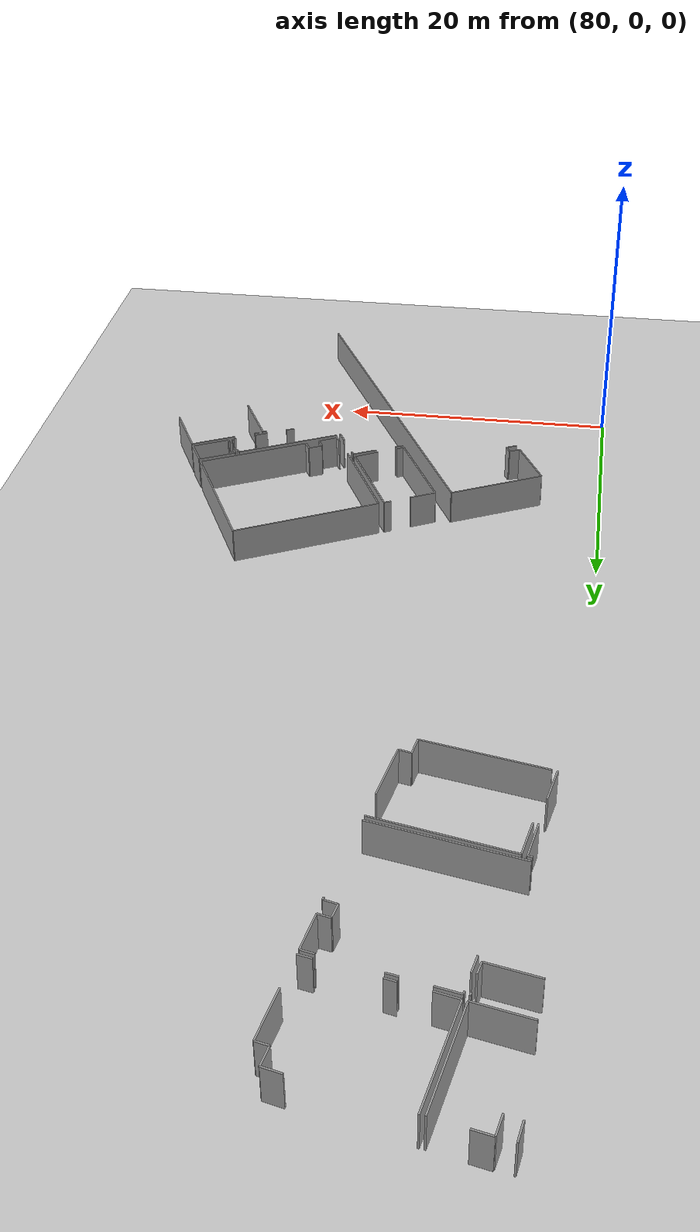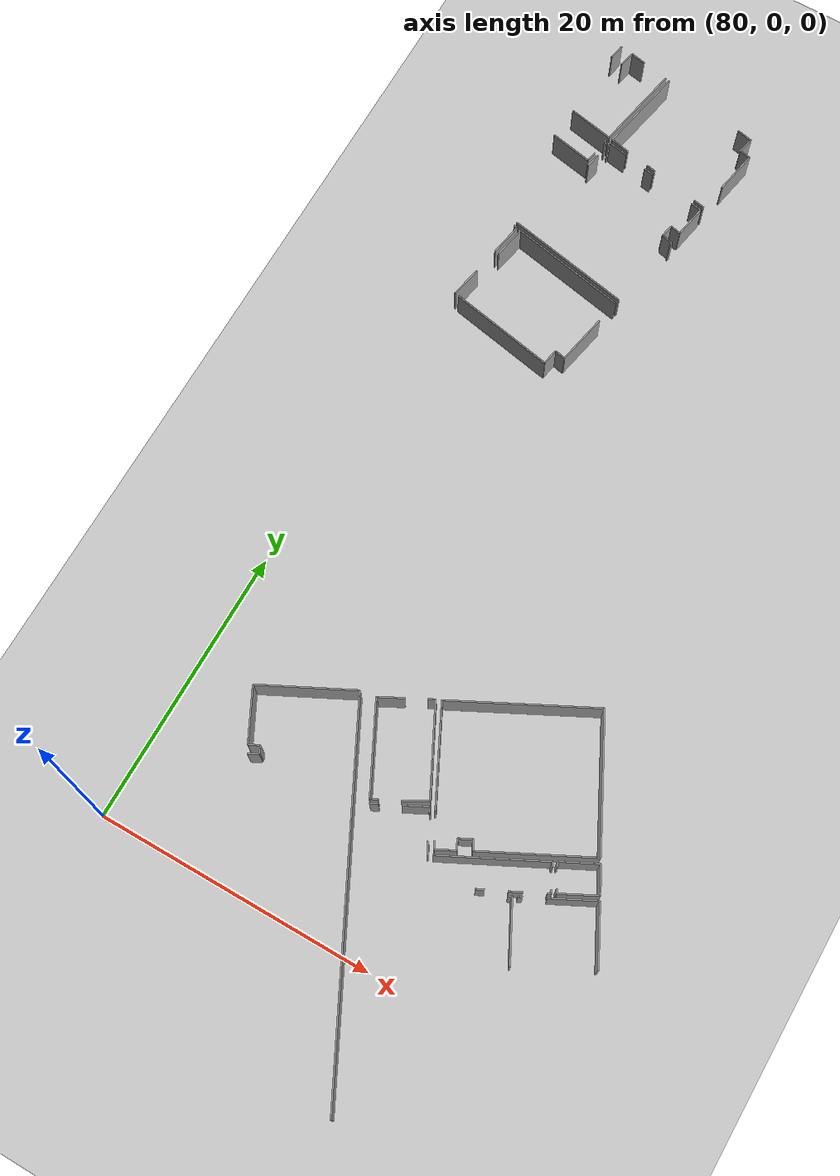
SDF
<sdf version="1.6">
 <world name="default">
  <model name="ground_plane">
   <static>1</static>
   <link name="link">
    <collision name="collision">
     <geometry><plane><normal>0 0 1</normal><size>100 100</size></plane></geometry>
     <surface><friction><ode><mu>100</mu><mu2>50</mu2></ode></friction></surface>
    </collision>
    <visual name="visual">
     <cast_shadows>0</cast_shadows>
     <geometry><plane><normal>0 0 1</normal><size>100 100</size></plane></geometry>
     <material>
      <script><uri>file://media/materials/scripts/gazebo.material</uri><name>Gazebo/Grey</name></script>
     </material>
    </visual>
   </link>
  </model>
  <model name="0510045925_40">
   <static>1</static>
   <link name="Wall_29">
    <collision name="Wall_29_Collision">
     <geometry><box><size>0.801804464238 0.1 2.5</size></box></geometry>
     <pose>0.400902232119 0 1.25 0 0 0</pose>
    </collision>
    <visual name="Wall_29_Visual">
     <pose>0.400902232119 0 1.25 0 0 0</pose>
     <geometry><box><size>0.801804464238 0.1 2.5</size></box></geometry>
     <material>
      <script><uri>file://media/materials/scripts/gazebo.material</uri><name>Gazebo/Grey</name></script>
      <ambient>1 1 1 1</ambient>
     </material>
    </visual>
    <pose>220.355625492 -93.2648156138 0 0 0 0.470442521411</pose>
   </link>
   <link name="Wall_30">
    <collision name="Wall_30_Collision">
     <geometry><box><size>0.570466044514 0.1 2.5</size></box></geometry>
     <pose>0.285233022257 0 1.25 0 0 0</pose>
    </collision>
    <visual name="Wall_30_Visual">
     <pose>0.285233022257 0 1.25 0 0 0</pose>
     <geometry><box><size>0.570466044514 0.1 2.5</size></box></geometry>
     <material>
      <script><uri>file://media/materials/scripts/gazebo.material</uri><name>Gazebo/Grey</name></script>
      <ambient>1 1 1 1</ambient>
     </material>
    </visual>
    <pose>221.070328164 -92.9013730616 0 0 0 2.05434180687</pose>
   </link>
   <link name="Wall_31">
    <collision name="Wall_31_Collision">
     <geometry><box><size>0.802244029599 0.1 2.5</size></box></geometry>
     <pose>0.4011220148 0 1.25 0 0 0</pose>
    </collision>
    <visual name="Wall_31_Visual">
     <pose>0.4011220148 0 1.25 0 0 0</pose>
     <geometry><box><size>0.802244029599 0.1 2.5</size></box></geometry>
     <material>
      <script><uri>file://media/materials/scripts/gazebo.material</uri><name>Gazebo/Grey</name></script>
      <ambient>1 1 1 1</ambient>
     </material>
    </visual>
    <pose>220.805106469 -92.3963097383 0 0 0 -2.69506520563</pose>
   </link>
   <link name="Wall_32">
    <collision name="Wall_32_Collision">
     <geometry><box><size>3.96179362654 0.1 2.5</size></box></geometry>
     <pose>1.98089681327 0 1.25 0 0 0</pose>
    </collision>
    <visual name="Wall_32_Visual">
     <pose>1.98089681327 0 1.25 0 0 0</pose>
     <geometry><box><size>3.96179362654 0.1 2.5</size></box></geometry>
     <material>
      <script><uri>file://media/materials/scripts/gazebo.material</uri><name>Gazebo/Grey</name></script>
      <ambient>1 1 1 1</ambient>
     </material>
    </visual>
    <pose>220.081520774 -92.742747646 0 0 0 2.04435679907</pose>
   </link>
   <link name="Wall_33">
    <collision name="Wall_33_Collision">
     <geometry><box><size>6.96411404976 0.1 2.5</size></box></geometry>
     <pose>3.48205702488 0 1.25 0 0 0</pose>
    </collision>
    <visual name="Wall_33_Visual">
     <pose>3.48205702488 0 1.25 0 0 0</pose>
     <geometry><box><size>6.96411404976 0.1 2.5</size></box></geometry>
     <material>
      <script><uri>file://media/materials/scripts/gazebo.material</uri><name>Gazebo/Grey</name></script>
      <ambient>1 1 1 1</ambient>
     </material>
    </visual>
    <pose>218.27471384 -89.2169488084 0 0 0 0.465880475751</pose>
   </link>
   <link name="Wall_34">
    <collision name="Wall_34_Collision">
     <geometry><box><size>26.6350946096 0.1 2.5</size></box></geometry>
     <pose>13.3175473048 0 1.25 0 0 0</pose>
    </collision>
    <visual name="Wall_34_Visual">
     <pose>13.3175473048 0 1.25 0 0 0</pose>
     <geometry><box><size>26.6350946096 0.1 2.5</size></box></geometry>
     <material>
      <script><uri>file://media/materials/scripts/gazebo.material</uri><name>Gazebo/Grey</name></script>
      <ambient>1 1 1 1</ambient>
     </material>
    </visual>
    <pose>224.496637141 -86.0886018121 0 0 0 -1.0994184397</pose>
   </link>
   <link name="Wall_185">
    <collision name="Wall_185_Collision">
     <geometry><box><size>6.65224664636 0.1 2.5</size></box></geometry>
     <pose>3.32612332318 0 1.25 0 0 0</pose>
    </collision>
    <visual name="Wall_185_Visual">
     <pose>3.32612332318 0 1.25 0 0 0</pose>
     <geometry><box><size>6.65224664636 0.1 2.5</size></box></geometry>
     <material>
      <script><uri>file://media/materials/scripts/gazebo.material</uri><name>Gazebo/Grey</name></script>
      <ambient>1 1 1 1</ambient>
     </material>
    </visual>
    <pose>228.663790259 -91.857998528 0 0 0 2.04159313063</pose>
   </link>
   <link name="Wall_186">
    <collision name="Wall_186_Collision">
     <geometry><box><size>1.86283370617 0.1 2.5</size></box></geometry>
     <pose>0.931416853087 0 1.25 0 0 0</pose>
    </collision>
    <visual name="Wall_186_Visual">
     <pose>0.931416853087 0 1.25 0 0 0</pose>
     <geometry><box><size>1.86283370617 0.1 2.5</size></box></geometry>
     <material>
      <script><uri>file://media/materials/scripts/gazebo.material</uri><name>Gazebo/Grey</name></script>
      <ambient>1 1 1 1</ambient>
     </material>
    </visual>
    <pose>225.646354153 -85.9294687952 0 0 0 0.475651176016</pose>
   </link>
   <link name="Wall_187">
    <collision name="Wall_187_Collision">
     <geometry><box><size>0.503315835092 0.1 2.5</size></box></geometry>
     <pose>0.251657917546 0 1.25 0 0 0</pose>
    </collision>
    <visual name="Wall_187_Visual">
     <pose>0.251657917546 0 1.25 0 0 0</pose>
     <geometry><box><size>0.503315835092 0.1 2.5</size></box></geometry>
     <material>
      <script><uri>file://media/materials/scripts/gazebo.material</uri><name>Gazebo/Grey</name></script>
      <ambient>1 1 1 1</ambient>
     </material>
    </visual>
    <pose>228.615568133 -84.3934671709 0 0 0 0.476727602752</pose>
   </link>
   <link name="Wall_188">
    <collision name="Wall_188_Collision">
     <geometry><box><size>6.65425583131 0.1 2.5</size></box></geometry>
     <pose>3.32712791566 0 1.25 0 0 0</pose>
    </collision>
    <visual name="Wall_188_Visual">
     <pose>3.32712791566 0 1.25 0 0 0</pose>
     <geometry><box><size>6.65425583131 0.1 2.5</size></box></geometry>
     <material>
      <script><uri>file://media/materials/scripts/gazebo.material</uri><name>Gazebo/Grey</name></script>
      <ambient>1 1 1 1</ambient>
     </material>
    </visual>
    <pose>229.062764904 -84.1625085658 0 0 0 -1.10075221655</pose>
   </link>
   <link name="Wall_189">
    <collision name="Wall_189_Collision">
     <geometry><box><size>1.82753539018 0.1 2.5</size></box></geometry>
     <pose>0.91376769509 0 1.25 0 0 0</pose>
    </collision>
    <visual name="Wall_189_Visual">
     <pose>0.91376769509 0 1.25 0 0 0</pose>
     <geometry><box><size>1.82753539018 0.1 2.5</size></box></geometry>
     <material>
      <script><uri>file://media/materials/scripts/gazebo.material</uri><name>Gazebo/Grey</name></script>
      <ambient>1 1 1 1</ambient>
     </material>
    </visual>
    <pose>232.076647801 -90.0950991092 0 0 0 -2.64415229598</pose>
   </link>
   <link name="Wall_190">
    <collision name="Wall_190_Collision">
     <geometry><box><size>0.546676322306 0.1 2.5</size></box></geometry>
     <pose>0.273338161153 0 1.25 0 0 0</pose>
    </collision>
    <visual name="Wall_190_Visual">
     <pose>0.273338161153 0 1.25 0 0 0</pose>
     <geometry><box><size>0.546676322306 0.1 2.5</size></box></geometry>
     <material>
      <script><uri>file://media/materials/scripts/gazebo.material</uri><name>Gazebo/Grey</name></script>
      <ambient>1 1 1 1</ambient>
     </material>
    </visual>
    <pose>229.163777569 -91.6369381488 0 0 0 -2.72530100757</pose>
   </link>
   <link name="Wall_191">
    <collision name="Wall_191_Collision">
     <geometry><box><size>10.5384348215 0.1 2.5</size></box></geometry>
     <pose>5.26921741075 0 1.25 0 0 0</pose>
    </collision>
    <visual name="Wall_191_Visual">
     <pose>5.26921741075 0 1.25 0 0 0</pose>
     <geometry><box><size>10.5384348215 0.1 2.5</size></box></geometry>
     <material>
      <script><uri>file://media/materials/scripts/gazebo.material</uri><name>Gazebo/Grey</name></script>
      <ambient>1 1 1 1</ambient>
     </material>
    </visual>
    <pose>229.439151291 -83.9993147382 0 0 0 0.470379156845</pose>
   </link>
   <link name="Wall_192">
    <collision name="Wall_192_Collision">
     <geometry><box><size>9.66241929952 0.1 2.5</size></box></geometry>
     <pose>4.83120964976 0 1.25 0 0 0</pose>
    </collision>
    <visual name="Wall_192_Visual">
     <pose>4.83120964976 0 1.25 0 0 0</pose>
     <geometry><box><size>9.66241929952 0.1 2.5</size></box></geometry>
     <material>
      <script><uri>file://media/materials/scripts/gazebo.material</uri><name>Gazebo/Grey</name></script>
      <ambient>1 1 1 1</ambient>
     </material>
    </visual>
    <pose>238.833075303 -79.2230400244 0 0 0 -1.10202706349</pose>
   </link>
   <link name="Wall_193">
    <collision name="Wall_193_Collision">
     <geometry><box><size>8.05867814222 0.1 2.5</size></box></geometry>
     <pose>4.02933907111 0 1.25 0 0 0</pose>
    </collision>
    <visual name="Wall_193_Visual">
     <pose>4.02933907111 0 1.25 0 0 0</pose>
     <geometry><box><size>8.05867814222 0.1 2.5</size></box></geometry>
     <material>
      <script><uri>file://media/materials/scripts/gazebo.material</uri><name>Gazebo/Grey</name></script>
      <ambient>1 1 1 1</ambient>
     </material>
    </visual>
    <pose>243.19844674 -87.843125809 0 0 0 -2.67374782702</pose>
   </link>
   <link name="Wall_194">
    <collision name="Wall_194_Collision">
     <geometry><box><size>0.730199156979 0.1 2.5</size></box></geometry>
     <pose>0.36509957849 0 1.25 0 0 0</pose>
    </collision>
    <visual name="Wall_194_Visual">
     <pose>0.36509957849 0 1.25 0 0 0</pose>
     <geometry><box><size>0.730199156979 0.1 2.5</size></box></geometry>
     <material>
      <script><uri>file://media/materials/scripts/gazebo.material</uri><name>Gazebo/Grey</name></script>
      <ambient>1 1 1 1</ambient>
     </material>
    </visual>
    <pose>236.005735895 -91.4772975305 0 0 0 2.0750252533</pose>
   </link>
   <link name="Wall_195">
    <collision name="Wall_195_Collision">
     <geometry><box><size>0.988505239638 0.1 2.5</size></box></geometry>
     <pose>0.494252619819 0 1.25 0 0 0</pose>
    </collision>
    <visual name="Wall_195_Visual">
     <pose>0.494252619819 0 1.25 0 0 0</pose>
     <geometry><box><size>0.988505239638 0.1 2.5</size></box></geometry>
     <material>
      <script><uri>file://media/materials/scripts/gazebo.material</uri><name>Gazebo/Grey</name></script>
      <ambient>1 1 1 1</ambient>
     </material>
    </visual>
    <pose>235.652952971 -90.8379736555 0 0 0 -2.68161938791</pose>
   </link>
   <link name="Wall_196">
    <collision name="Wall_196_Collision">
     <geometry><box><size>0.763258778433 0.1 2.5</size></box></geometry>
     <pose>0.381629389216 0 1.25 0 0 0</pose>
    </collision>
    <visual name="Wall_196_Visual">
     <pose>0.381629389216 0 1.25 0 0 0</pose>
     <geometry><box><size>0.763258778433 0.1 2.5</size></box></geometry>
     <material>
      <script><uri>file://media/materials/scripts/gazebo.material</uri><name>Gazebo/Grey</name></script>
      <ambient>1 1 1 1</ambient>
     </material>
    </visual>
    <pose>234.76718865 -91.2767950052 0 0 0 -1.12008672279</pose>
   </link>
   <link name="Wall_197">
    <collision name="Wall_197_Collision">
     <geometry><box><size>1.42061362268 0.1 2.5</size></box></geometry>
     <pose>0.710306811341 0 1.25 0 0 0</pose>
    </collision>
    <visual name="Wall_197_Visual">
     <pose>0.710306811341 0 1.25 0 0 0</pose>
     <geometry><box><size>1.42061362268 0.1 2.5</size></box></geometry>
     <material>
      <script><uri>file://media/materials/scripts/gazebo.material</uri><name>Gazebo/Grey</name></script>
      <ambient>1 1 1 1</ambient>
     </material>
    </visual>
    <pose>235.099667521 -91.9638334052 0 0 0 -2.65972746615</pose>
   </link>
   <link name="Wall_198">
    <collision name="Wall_198_Collision">
     <geometry><box><size>0.546520705868 0.1 2.5</size></box></geometry>
     <pose>0.273260352934 0 1.25 0 0 0</pose>
    </collision>
    <visual name="Wall_198_Visual">
     <pose>0.273260352934 0 1.25 0 0 0</pose>
     <geometry><box><size>0.546520705868 0.1 2.5</size></box></geometry>
     <material>
      <script><uri>file://media/materials/scripts/gazebo.material</uri><name>Gazebo/Grey</name></script>
      <ambient>1 1 1 1</ambient>
     </material>
    </visual>
    <pose>233.840816223 -92.6221923301 0 0 0 2.08015012732</pose>
   </link>
   <link name="Wall_199">
    <collision name="Wall_199_Collision">
     <geometry><box><size>7.23049127737 0.1 2.5</size></box></geometry>
     <pose>3.61524563868 0 1.25 0 0 0</pose>
    </collision>
    <visual name="Wall_199_Visual">
     <pose>3.61524563868 0 1.25 0 0 0</pose>
     <geometry><box><size>7.23049127737 0.1 2.5</size></box></geometry>
     <material>
      <script><uri>file://media/materials/scripts/gazebo.material</uri><name>Gazebo/Grey</name></script>
      <ambient>1 1 1 1</ambient>
     </material>
    </visual>
    <pose>232.678409177 -90.4636176747 0 0 0 2.03532301505</pose>
   </link>
   <link name="Wall_200">
    <collision name="Wall_200_Collision">
     <geometry><box><size>2.70568869587 0.1 2.5</size></box></geometry>
     <pose>1.35284434793 0 1.25 0 0 0</pose>
    </collision>
    <visual name="Wall_200_Visual">
     <pose>1.35284434793 0 1.25 0 0 0</pose>
     <geometry><box><size>2.70568869587 0.1 2.5</size></box></geometry>
     <material>
      <script><uri>file://media/materials/scripts/gazebo.material</uri><name>Gazebo/Grey</name></script>
      <ambient>1 1 1 1</ambient>
     </material>
    </visual>
    <pose>240.957386868 -89.3852186493 0 0 0 0.464738304096</pose>
   </link>
   <link name="Wall_201">
    <collision name="Wall_201_Collision">
     <geometry><box><size>1.99512909354 0.1 2.5</size></box></geometry>
     <pose>0.99756454677 0 1.25 0 0 0</pose>
    </collision>
    <visual name="Wall_201_Visual">
     <pose>0.99756454677 0 1.25 0 0 0</pose>
     <geometry><box><size>1.99512909354 0.1 2.5</size></box></geometry>
     <material>
      <script><uri>file://media/materials/scripts/gazebo.material</uri><name>Gazebo/Grey</name></script>
      <ambient>1 1 1 1</ambient>
     </material>
    </visual>
    <pose>243.376107205 -88.1725590721 0 0 0 -1.08649614078</pose>
   </link>
   <link name="Wall_202">
    <collision name="Wall_202_Collision">
     <geometry><box><size>2.71895594568 0.1 2.5</size></box></geometry>
     <pose>1.35947797284 0 1.25 0 0 0</pose>
    </collision>
    <visual name="Wall_202_Visual">
     <pose>1.35947797284 0 1.25 0 0 0</pose>
     <geometry><box><size>2.71895594568 0.1 2.5</size></box></geometry>
     <material>
      <script><uri>file://media/materials/scripts/gazebo.material</uri><name>Gazebo/Grey</name></script>
      <ambient>1 1 1 1</ambient>
     </material>
    </visual>
    <pose>244.305017639 -89.9382502982 0 0 0 -2.66926195314</pose>
   </link>
   <link name="Wall_203">
    <collision name="Wall_203_Collision">
     <geometry><box><size>0.313564533113 0.1 2.5</size></box></geometry>
     <pose>0.156782266556 0 1.25 0 0 0</pose>
    </collision>
    <visual name="Wall_203_Visual">
     <pose>0.156782266556 0 1.25 0 0 0</pose>
     <geometry><box><size>0.313564533113 0.1 2.5</size></box></geometry>
     <material>
      <script><uri>file://media/materials/scripts/gazebo.material</uri><name>Gazebo/Grey</name></script>
      <ambient>1 1 1 1</ambient>
     </material>
    </visual>
    <pose>241.883759295 -91.1752747392 0 0 0 2.07789483119</pose>
   </link>
   <link name="Wall_204">
    <collision name="Wall_204_Collision">
     <geometry><box><size>0.372066581054 0.1 2.5</size></box></geometry>
     <pose>0.186033290527 0 1.25 0 0 0</pose>
    </collision>
    <visual name="Wall_204_Visual">
     <pose>0.186033290527 0 1.25 0 0 0</pose>
     <geometry><box><size>0.372066581054 0.1 2.5</size></box></geometry>
     <material>
      <script><uri>file://media/materials/scripts/gazebo.material</uri><name>Gazebo/Grey</name></script>
      <ambient>1 1 1 1</ambient>
     </material>
    </visual>
    <pose>241.122357301 -89.718712723 0 0 0 2.03017306487</pose>
   </link>
   <link name="Wall_207">
    <collision name="Wall_207_Collision">
     <geometry><box><size>0.282734396419 0.1 2.5</size></box></geometry>
     <pose>0.14136719821 0 1.25 0 0 0</pose>
    </collision>
    <visual name="Wall_207_Visual">
     <pose>0.14136719821 0 1.25 0 0 0</pose>
     <geometry><box><size>0.282734396419 0.1 2.5</size></box></geometry>
     <material>
      <script><uri>file://media/materials/scripts/gazebo.material</uri><name>Gazebo/Grey</name></script>
      <ambient>1 1 1 1</ambient>
     </material>
    </visual>
    <pose>239.284840486 -92.838938098 0 0 0 0.43554256154</pose>
   </link>
   <link name="Wall_208">
    <collision name="Wall_208_Collision">
     <geometry><box><size>4.28891648338 0.1 2.5</size></box></geometry>
     <pose>2.14445824169 0 1.25 0 0 0</pose>
    </collision>
    <visual name="Wall_208_Visual">
     <pose>2.14445824169 0 1.25 0 0 0</pose>
     <geometry><box><size>4.28891648338 0.1 2.5</size></box></geometry>
     <material>
      <script><uri>file://media/materials/scripts/gazebo.material</uri><name>Gazebo/Grey</name></script>
      <ambient>1 1 1 1</ambient>
     </material>
    </visual>
    <pose>239.541179158 -92.7196517855 0 0 0 -1.0950277785</pose>
   </link>
   <link name="Wall_211">
    <collision name="Wall_211_Collision">
     <geometry><box><size>0.31769528016 0.1 2.5</size></box></geometry>
     <pose>0.15884764008 0 1.25 0 0 0</pose>
    </collision>
    <visual name="Wall_211_Visual">
     <pose>0.15884764008 0 1.25 0 0 0</pose>
     <geometry><box><size>0.31769528016 0.1 2.5</size></box></geometry>
     <material>
      <script><uri>file://media/materials/scripts/gazebo.material</uri><name>Gazebo/Grey</name></script>
      <ambient>1 1 1 1</ambient>
     </material>
    </visual>
    <pose>239.835587929 -92.5584883632 0 0 0 0.462933068215</pose>
   </link>
   <link name="Wall_212">
    <collision name="Wall_212_Collision">
     <geometry><box><size>3.28710663874 0.1 2.5</size></box></geometry>
     <pose>1.64355331937 0 1.25 0 0 0</pose>
    </collision>
    <visual name="Wall_212_Visual">
     <pose>1.64355331937 0 1.25 0 0 0</pose>
     <geometry><box><size>3.28710663874 0.1 2.5</size></box></geometry>
     <material>
      <script><uri>file://media/materials/scripts/gazebo.material</uri><name>Gazebo/Grey</name></script>
      <ambient>1 1 1 1</ambient>
     </material>
    </visual>
    <pose>241.497982285 -91.7143473516 0 0 0 0.469517707322</pose>
   </link>
   <link name="Wall_213">
    <collision name="Wall_213_Collision">
     <geometry><box><size>4.30461598477 0.1 2.5</size></box></geometry>
     <pose>2.15230799238 0 1.25 0 0 0</pose>
    </collision>
    <visual name="Wall_213_Visual">
     <pose>2.15230799238 0 1.25 0 0 0</pose>
     <geometry><box><size>4.30461598477 0.1 2.5</size></box></geometry>
     <material>
      <script><uri>file://media/materials/scripts/gazebo.material</uri><name>Gazebo/Grey</name></script>
      <ambient>1 1 1 1</ambient>
     </material>
    </visual>
    <pose>244.429379965 -90.2270754549 0 0 0 -1.09955472814</pose>
   </link>
   <link name="Wall_215">
    <collision name="Wall_215_Collision">
     <geometry><box><size>0.597059200058 0.1 2.5</size></box></geometry>
     <pose>0.298529600029 0 1.25 0 0 0</pose>
    </collision>
    <visual name="Wall_215_Visual">
     <pose>0.298529600029 0 1.25 0 0 0</pose>
     <geometry><box><size>0.597059200058 0.1 2.5</size></box></geometry>
     <material>
      <script><uri>file://media/materials/scripts/gazebo.material</uri><name>Gazebo/Grey</name></script>
      <ambient>1 1 1 1</ambient>
     </material>
    </visual>
    <pose>237.295043273 -93.4807999797 0 0 0 0.428280965675</pose>
   </link>
   <link name="Wall_216">
    <collision name="Wall_216_Collision">
     <geometry><box><size>0.933126059611 0.1 2.5</size></box></geometry>
     <pose>0.466563029806 0 1.25 0 0 0</pose>
    </collision>
    <visual name="Wall_216_Visual">
     <pose>0.466563029806 0 1.25 0 0 0</pose>
     <geometry><box><size>0.933126059611 0.1 2.5</size></box></geometry>
     <material>
      <script><uri>file://media/materials/scripts/gazebo.material</uri><name>Gazebo/Grey</name></script>
      <ambient>1 1 1 1</ambient>
     </material>
    </visual>
    <pose>239.1757062 -92.5803152204 0 0 0 0.486517449898</pose>
   </link>
   <link name="Wall_217">
    <collision name="Wall_217_Collision">
     <geometry><box><size>0.266121101512 0.1 2.5</size></box></geometry>
     <pose>0.133060550756 0 1.25 0 0 0</pose>
    </collision>
    <visual name="Wall_217_Visual">
     <pose>0.133060550756 0 1.25 0 0 0</pose>
     <geometry><box><size>0.266121101512 0.1 2.5</size></box></geometry>
     <material>
      <script><uri>file://media/materials/scripts/gazebo.material</uri><name>Gazebo/Grey</name></script>
      <ambient>1 1 1 1</ambient>
     </material>
    </visual>
    <pose>241.358391919 -91.4838963478 0 0 0 0.538783911281</pose>
   </link>
   <link name="Wall_218">
    <collision name="Wall_218_Collision">
     <geometry><box><size>0.236505726272 0.1 2.5</size></box></geometry>
     <pose>0.118252863136 0 1.25 0 0 0</pose>
    </collision>
    <visual name="Wall_218_Visual">
     <pose>0.118252863136 0 1.25 0 0 0</pose>
     <geometry><box><size>0.236505726272 0.1 2.5</size></box></geometry>
     <material>
      <script><uri>file://media/materials/scripts/gazebo.material</uri><name>Gazebo/Grey</name></script>
      <ambient>1 1 1 1</ambient>
     </material>
    </visual>
    <pose>241.586812517 -91.3473515901 0 0 0 2.07476788703</pose>
   </link>
   <link name="Wall_219">
    <collision name="Wall_219_Collision">
     <geometry><box><size>0.32711361369 0.1 2.5</size></box></geometry>
     <pose>0.163556806845 0 1.25 0 0 0</pose>
    </collision>
    <visual name="Wall_219_Visual">
     <pose>0.163556806845 0 1.25 0 0 0</pose>
     <geometry><box><size>0.32711361369 0.1 2.5</size></box></geometry>
     <material>
      <script><uri>file://media/materials/scripts/gazebo.material</uri><name>Gazebo/Grey</name></script>
      <ambient>1 1 1 1</ambient>
     </material>
    </visual>
    <pose>240.863480622 -89.8385066369 0 0 0 2.16353313212</pose>
   </link>
   <link name="Wall_220">
    <collision name="Wall_220_Collision">
     <geometry><box><size>7.57000635437 0.1 2.5</size></box></geometry>
     <pose>3.78500317718 0 1.25 0 0 0</pose>
    </collision>
    <visual name="Wall_220_Visual">
     <pose>3.78500317718 0 1.25 0 0 0</pose>
     <geometry><box><size>7.57000635437 0.1 2.5</size></box></geometry>
     <material>
      <script><uri>file://media/materials/scripts/gazebo.material</uri><name>Gazebo/Grey</name></script>
      <ambient>1 1 1 1</ambient>
     </material>
    </visual>
    <pose>240.680744144 -89.567193726 0 0 0 -2.67512620778</pose>
   </link>
   <link name="Wall_318">
    <collision name="Wall_318_Collision">
     <geometry><box><size>0.571042979669 0.1 2.5</size></box></geometry>
     <pose>0.285521489835 0 1.25 0 0 0</pose>
    </collision>
    <visual name="Wall_318_Visual">
     <pose>0.285521489835 0 1.25 0 0 0</pose>
     <geometry><box><size>0.571042979669 0.1 2.5</size></box></geometry>
     <material>
      <script><uri>file://media/materials/scripts/gazebo.material</uri><name>Gazebo/Grey</name></script>
      <ambient>1 1 1 1</ambient>
     </material>
    </visual>
    <pose>228.788660186 -92.1204284155 0 0 0 0.458082172525</pose>
   </link>
   <link name="Wall_319">
    <collision name="Wall_319_Collision">
     <geometry><box><size>1.79017309064 0.1 2.5</size></box></geometry>
     <pose>0.89508654532 0 1.25 0 0 0</pose>
    </collision>
    <visual name="Wall_319_Visual">
     <pose>0.89508654532 0 1.25 0 0 0</pose>
     <geometry><box><size>1.79017309064 0.1 2.5</size></box></geometry>
     <material>
      <script><uri>file://media/materials/scripts/gazebo.material</uri><name>Gazebo/Grey</name></script>
      <ambient>1 1 1 1</ambient>
     </material>
    </visual>
    <pose>230.639882236 -91.205730819 0 0 0 0.465169291823</pose>
   </link>
   <link name="Wall_320">
    <collision name="Wall_320_Collision">
     <geometry><box><size>0.390417034789 0.1 2.5</size></box></geometry>
     <pose>0.195208517395 0 1.25 0 0 0</pose>
    </collision>
    <visual name="Wall_320_Visual">
     <pose>0.195208517395 0 1.25 0 0 0</pose>
     <geometry><box><size>0.390417034789 0.1 2.5</size></box></geometry>
     <material>
      <script><uri>file://media/materials/scripts/gazebo.material</uri><name>Gazebo/Grey</name></script>
      <ambient>1 1 1 1</ambient>
     </material>
    </visual>
    <pose>232.239841628 -90.4027055151 0 0 0 -1.04955377956</pose>
   </link>
   <link name="Wall_321">
    <collision name="Wall_321_Collision">
     <geometry><box><size>0.905119679374 0.1 2.5</size></box></geometry>
     <pose>0.452559839687 0 1.25 0 0 0</pose>
    </collision>
    <visual name="Wall_321_Visual">
     <pose>0.452559839687 0 1.25 0 0 0</pose>
     <geometry><box><size>0.905119679374 0.1 2.5</size></box></geometry>
     <material>
      <script><uri>file://media/materials/scripts/gazebo.material</uri><name>Gazebo/Grey</name></script>
      <ambient>1 1 1 1</ambient>
     </material>
    </visual>
    <pose>233.23677064 -92.35113322 0 0 0 -1.07391127632</pose>
   </link>
   <link name="Wall_562">
    <collision name="Wall_562_Collision">
     <geometry><box><size>1.16593564241 0.1 2.5</size></box></geometry>
     <pose>0.582967821205 0 1.25 0 0 0</pose>
    </collision>
    <visual name="Wall_562_Visual">
     <pose>0.582967821205 0 1.25 0 0 0</pose>
     <geometry><box><size>1.16593564241 0.1 2.5</size></box></geometry>
     <material>
      <script><uri>file://media/materials/scripts/gazebo.material</uri><name>Gazebo/Grey</name></script>
      <ambient>1 1 1 1</ambient>
     </material>
    </visual>
    <pose>216.314357504 -34.7327986599 0 0 0 -1.74671690163</pose>
   </link>
   <link name="Wall_564">
    <collision name="Wall_564_Collision">
     <geometry><box><size>1.20411134977 0.1 2.5</size></box></geometry>
     <pose>0.602055674885 0 1.25 0 0 0</pose>
    </collision>
    <visual name="Wall_564_Visual">
     <pose>0.602055674885 0 1.25 0 0 0</pose>
     <geometry><box><size>1.20411134977 0.1 2.5</size></box></geometry>
     <material>
      <script><uri>file://media/materials/scripts/gazebo.material</uri><name>Gazebo/Grey</name></script>
      <ambient>1 1 1 1</ambient>
     </material>
    </visual>
    <pose>217.03058298 -36.0799725895 0 0 0 1.36273560705</pose>
   </link>
   <link name="Wall_565">
    <collision name="Wall_565_Collision">
     <geometry><box><size>1.1400838023 0.1 2.5</size></box></geometry>
     <pose>0.570041901151 0 1.25 0 0 0</pose>
    </collision>
    <visual name="Wall_565_Visual">
     <pose>0.570041901151 0 1.25 0 0 0</pose>
     <geometry><box><size>1.1400838023 0.1 2.5</size></box></geometry>
     <material>
      <script><uri>file://media/materials/scripts/gazebo.material</uri><name>Gazebo/Grey</name></script>
      <ambient>1 1 1 1</ambient>
     </material>
    </visual>
    <pose>217.279307632 -34.9018299028 0 0 0 -0.196042144392</pose>
   </link>
   <link name="Wall_566">
    <collision name="Wall_566_Collision">
     <geometry><box><size>6.541583933 0.1 2.5</size></box></geometry>
     <pose>3.2707919665 0 1.25 0 0 0</pose>
    </collision>
    <visual name="Wall_566_Visual">
     <pose>3.2707919665 0 1.25 0 0 0</pose>
     <geometry><box><size>6.541583933 0.1 2.5</size></box></geometry>
     <material>
      <script><uri>file://media/materials/scripts/gazebo.material</uri><name>Gazebo/Grey</name></script>
      <ambient>1 1 1 1</ambient>
     </material>
    </visual>
    <pose>220.378467552 -35.4926778508 0 0 0 -1.76317758567</pose>
   </link>
   <link name="Wall_567">
    <collision name="Wall_567_Collision">
     <geometry><box><size>3.39094272408 0.1 2.5</size></box></geometry>
     <pose>1.69547136204 0 1.25 0 0 0</pose>
    </collision>
    <visual name="Wall_567_Visual">
     <pose>1.69547136204 0 1.25 0 0 0</pose>
     <geometry><box><size>3.39094272408 0.1 2.5</size></box></geometry>
     <material>
      <script><uri>file://media/materials/scripts/gazebo.material</uri><name>Gazebo/Grey</name></script>
      <ambient>1 1 1 1</ambient>
     </material>
    </visual>
    <pose>219.127737875 -41.9135808736 0 0 0 2.94680989348</pose>
   </link>
   <link name="Wall_574">
    <collision name="Wall_574_Collision">
     <geometry><box><size>0.286244396768 0.1 2.5</size></box></geometry>
     <pose>0.143122198384 0 1.25 0 0 0</pose>
    </collision>
    <visual name="Wall_574_Visual">
     <pose>0.143122198384 0 1.25 0 0 0</pose>
     <geometry><box><size>0.286244396768 0.1 2.5</size></box></geometry>
     <material>
      <script><uri>file://media/materials/scripts/gazebo.material</uri><name>Gazebo/Grey</name></script>
      <ambient>1 1 1 1</ambient>
     </material>
    </visual>
    <pose>216.662318215 -51.5333874775 0 0 0 -0.214437388134</pose>
   </link>
   <link name="Wall_575">
    <collision name="Wall_575_Collision">
     <geometry><box><size>2.44325785359 0.1 2.5</size></box></geometry>
     <pose>1.22162892679 0 1.25 0 0 0</pose>
    </collision>
    <visual name="Wall_575_Visual">
     <pose>1.22162892679 0 1.25 0 0 0</pose>
     <geometry><box><size>2.44325785359 0.1 2.5</size></box></geometry>
     <material>
      <script><uri>file://media/materials/scripts/gazebo.material</uri><name>Gazebo/Grey</name></script>
      <ambient>1 1 1 1</ambient>
     </material>
    </visual>
    <pose>216.942006548 -51.5942996371 0 0 0 -1.75602941568</pose>
   </link>
   <link name="Wall_576">
    <collision name="Wall_576_Collision">
     <geometry><box><size>2.34463478816 0.1 2.5</size></box></geometry>
     <pose>1.17231739408 0 1.25 0 0 0</pose>
    </collision>
    <visual name="Wall_576_Visual">
     <pose>1.17231739408 0 1.25 0 0 0</pose>
     <geometry><box><size>2.34463478816 0.1 2.5</size></box></geometry>
     <material>
      <script><uri>file://media/materials/scripts/gazebo.material</uri><name>Gazebo/Grey</name></script>
      <ambient>1 1 1 1</ambient>
     </material>
    </visual>
    <pose>216.142280653 -55.9416512271 0 0 0 -1.77131256434</pose>
   </link>
   <link name="Wall_583">
    <collision name="Wall_583_Collision">
     <geometry><box><size>6.54973172122 0.1 2.5</size></box></geometry>
     <pose>3.27486586061 0 1.25 0 0 0</pose>
    </collision>
    <visual name="Wall_583_Visual">
     <pose>3.27486586061 0 1.25 0 0 0</pose>
     <geometry><box><size>6.54973172122 0.1 2.5</size></box></geometry>
     <material>
      <script><uri>file://media/materials/scripts/gazebo.material</uri><name>Gazebo/Grey</name></script>
      <ambient>1 1 1 1</ambient>
     </material>
    </visual>
    <pose>219.416816832 -41.9516509733 0 0 0 1.37569580502</pose>
   </link>
   <link name="Wall_584">
    <collision name="Wall_584_Collision">
     <geometry><box><size>1.17288163475 0.1 2.5</size></box></geometry>
     <pose>0.586440817376 0 1.25 0 0 0</pose>
    </collision>
    <visual name="Wall_584_Visual">
     <pose>0.586440817376 0 1.25 0 0 0</pose>
     <geometry><box><size>1.17288163475 0.1 2.5</size></box></geometry>
     <material>
      <script><uri>file://media/materials/scripts/gazebo.material</uri><name>Gazebo/Grey</name></script>
      <ambient>1 1 1 1</ambient>
     </material>
    </visual>
    <pose>226.955965585 -36.7708179995 0 0 0 -0.217894407231</pose>
   </link>
   <link name="Wall_585">
    <collision name="Wall_585_Collision">
     <geometry><box><size>1.17462986657 0.1 2.5</size></box></geometry>
     <pose>0.587314933286 0 1.25 0 0 0</pose>
    </collision>
    <visual name="Wall_585_Visual">
     <pose>0.587314933286 0 1.25 0 0 0</pose>
     <geometry><box><size>1.17462986657 0.1 2.5</size></box></geometry>
     <material>
      <script><uri>file://media/materials/scripts/gazebo.material</uri><name>Gazebo/Grey</name></script>
      <ambient>1 1 1 1</ambient>
     </material>
    </visual>
    <pose>228.101114185 -37.0243648638 0 0 0 -1.77069198737</pose>
   </link>
   <link name="Wall_586">
    <collision name="Wall_586_Collision">
     <geometry><box><size>0.796912910688 0.1 2.5</size></box></geometry>
     <pose>0.398456455344 0 1.25 0 0 0</pose>
    </collision>
    <visual name="Wall_586_Visual">
     <pose>0.398456455344 0 1.25 0 0 0</pose>
     <geometry><box><size>0.796912910688 0.1 2.5</size></box></geometry>
     <material>
      <script><uri>file://media/materials/scripts/gazebo.material</uri><name>Gazebo/Grey</name></script>
      <ambient>1 1 1 1</ambient>
     </material>
    </visual>
    <pose>227.867871374 -38.1756046801 0 0 0 -0.205265478569</pose>
   </link>
   <link name="Wall_587">
    <collision name="Wall_587_Collision">
     <geometry><box><size>3.18178775387 0.1 2.5</size></box></geometry>
     <pose>1.59089387693 0 1.25 0 0 0</pose>
    </collision>
    <visual name="Wall_587_Visual">
     <pose>1.59089387693 0 1.25 0 0 0</pose>
     <geometry><box><size>3.18178775387 0.1 2.5</size></box></geometry>
     <material>
      <script><uri>file://media/materials/scripts/gazebo.material</uri><name>Gazebo/Grey</name></script>
      <ambient>1 1 1 1</ambient>
     </material>
    </visual>
    <pose>228.648054618 -38.3380371057 0 0 0 -1.75822679044</pose>
   </link>
   <link name="Wall_588">
    <collision name="Wall_588_Collision">
     <geometry><box><size>0.851144662794 0.1 2.5</size></box></geometry>
     <pose>0.425572331397 0 1.25 0 0 0</pose>
    </collision>
    <visual name="Wall_588_Visual">
     <pose>0.425572331397 0 1.25 0 0 0</pose>
     <geometry><box><size>0.851144662794 0.1 2.5</size></box></geometry>
     <material>
      <script><uri>file://media/materials/scripts/gazebo.material</uri><name>Gazebo/Grey</name></script>
      <ambient>1 1 1 1</ambient>
     </material>
    </visual>
    <pose>227.651887008 -43.5703916144 0 0 0 2.94653627076</pose>
   </link>
   <link name="Wall_589">
    <collision name="Wall_589_Collision">
     <geometry><box><size>0.698909338565 0.1 2.5</size></box></geometry>
     <pose>0.349454669283 0 1.25 0 0 0</pose>
    </collision>
    <visual name="Wall_589_Visual">
     <pose>0.349454669283 0 1.25 0 0 0</pose>
     <geometry><box><size>0.698909338565 0.1 2.5</size></box></geometry>
     <material>
      <script><uri>file://media/materials/scripts/gazebo.material</uri><name>Gazebo/Grey</name></script>
      <ambient>1 1 1 1</ambient>
     </material>
    </visual>
    <pose>223.278140149 -42.7166061775 0 0 0 2.92938336263</pose>
   </link>
   <link name="Wall_590">
    <collision name="Wall_590_Collision">
     <geometry><box><size>1.46287420656 0.1 2.5</size></box></geometry>
     <pose>0.731437103282 0 1.25 0 0 0</pose>
    </collision>
    <visual name="Wall_590_Visual">
     <pose>0.731437103282 0 1.25 0 0 0</pose>
     <geometry><box><size>1.46287420656 0.1 2.5</size></box></geometry>
     <material>
      <script><uri>file://media/materials/scripts/gazebo.material</uri><name>Gazebo/Grey</name></script>
      <ambient>1 1 1 1</ambient>
     </material>
    </visual>
    <pose>220.848760184 -42.2508819573 0 0 0 2.93558864329</pose>
   </link>
   <link name="Wall_593">
    <collision name="Wall_593_Collision">
     <geometry><box><size>0.199134078442 0.1 2.5</size></box></geometry>
     <pose>0.0995670392212 0 1.25 0 0 0</pose>
    </collision>
    <visual name="Wall_593_Visual">
     <pose>0.0995670392212 0 1.25 0 0 0</pose>
     <geometry><box><size>0.199134078442 0.1 2.5</size></box></geometry>
     <material>
      <script><uri>file://media/materials/scripts/gazebo.material</uri><name>Gazebo/Grey</name></script>
      <ambient>1 1 1 1</ambient>
     </material>
    </visual>
    <pose>219.06479531 -42.2196644755 0 0 0 -1.71016995489</pose>
   </link>
   <link name="Wall_594">
    <collision name="Wall_594_Collision">
     <geometry><box><size>0.768574291554 0.1 2.5</size></box></geometry>
     <pose>0.384287145777 0 1.25 0 0 0</pose>
    </collision>
    <visual name="Wall_594_Visual">
     <pose>0.384287145777 0 1.25 0 0 0</pose>
     <geometry><box><size>0.768574291554 0.1 2.5</size></box></geometry>
     <material>
      <script><uri>file://media/materials/scripts/gazebo.material</uri><name>Gazebo/Grey</name></script>
      <ambient>1 1 1 1</ambient>
     </material>
    </visual>
    <pose>218.855917363 -43.5630313951 0 0 0 -1.79863472697</pose>
   </link>
   <link name="Wall_595">
    <collision name="Wall_595_Collision">
     <geometry><box><size>3.1275332087 0.1 2.5</size></box></geometry>
     <pose>1.56376660435 0 1.25 0 0 0</pose>
    </collision>
    <visual name="Wall_595_Visual">
     <pose>1.56376660435 0 1.25 0 0 0</pose>
     <geometry><box><size>3.1275332087 0.1 2.5</size></box></geometry>
     <material>
      <script><uri>file://media/materials/scripts/gazebo.material</uri><name>Gazebo/Grey</name></script>
      <ambient>1 1 1 1</ambient>
     </material>
    </visual>
    <pose>218.682317708 -44.3117433568 0 0 0 2.9464888426</pose>
   </link>
   <link name="Wall_598">
    <collision name="Wall_598_Collision">
     <geometry><box><size>1.11084016527 0.1 2.5</size></box></geometry>
     <pose>0.555420082634 0 1.25 0 0 0</pose>
    </collision>
    <visual name="Wall_598_Visual">
     <pose>0.555420082634 0 1.25 0 0 0</pose>
     <geometry><box><size>1.11084016527 0.1 2.5</size></box></geometry>
     <material>
      <script><uri>file://media/materials/scripts/gazebo.material</uri><name>Gazebo/Grey</name></script>
      <ambient>1 1 1 1</ambient>
     </material>
    </visual>
    <pose>218.909976904 -44.675185909 0 0 0 1.36672434152</pose>
   </link>
   <link name="Wall_599">
    <collision name="Wall_599_Collision">
     <geometry><box><size>0.195067730438 0.1 2.5</size></box></geometry>
     <pose>0.0975338652189 0 1.25 0 0 0</pose>
    </collision>
    <visual name="Wall_599_Visual">
     <pose>0.0975338652189 0 1.25 0 0 0</pose>
     <geometry><box><size>0.195067730438 0.1 2.5</size></box></geometry>
     <material>
      <script><uri>file://media/materials/scripts/gazebo.material</uri><name>Gazebo/Grey</name></script>
      <ambient>1 1 1 1</ambient>
     </material>
    </visual>
    <pose>219.347021649 -42.4544300906 0 0 0 1.36906295287</pose>
   </link>
   <link name="Wall_600">
    <collision name="Wall_600_Collision">
     <geometry><box><size>1.48196451121 0.1 2.5</size></box></geometry>
     <pose>0.740982255606 0 1.25 0 0 0</pose>
    </collision>
    <visual name="Wall_600_Visual">
     <pose>0.740982255606 0 1.25 0 0 0</pose>
     <geometry><box><size>1.48196451121 0.1 2.5</size></box></geometry>
     <material>
      <script><uri>file://media/materials/scripts/gazebo.material</uri><name>Gazebo/Grey</name></script>
      <ambient>1 1 1 1</ambient>
     </material>
    </visual>
    <pose>219.386106952 -42.2633181899 0 0 0 -0.190913267279</pose>
   </link>
   <link name="Wall_601">
    <collision name="Wall_601_Collision">
     <geometry><box><size>0.713269009315 0.1 2.5</size></box></geometry>
     <pose>0.356634504657 0 1.25 0 0 0</pose>
    </collision>
    <visual name="Wall_601_Visual">
     <pose>0.356634504657 0 1.25 0 0 0</pose>
     <geometry><box><size>0.713269009315 0.1 2.5</size></box></geometry>
     <material>
      <script><uri>file://media/materials/scripts/gazebo.material</uri><name>Gazebo/Grey</name></script>
      <ambient>1 1 1 1</ambient>
     </material>
    </visual>
    <pose>222.549986041 -42.8876678257 0 0 0 -0.195162486102</pose>
   </link>
   <link name="Wall_602">
    <collision name="Wall_602_Collision">
     <geometry><box><size>0.813867345479 0.1 2.5</size></box></geometry>
     <pose>0.406933672739 0 1.25 0 0 0</pose>
    </collision>
    <visual name="Wall_602_Visual">
     <pose>0.406933672739 0 1.25 0 0 0</pose>
     <geometry><box><size>0.813867345479 0.1 2.5</size></box></geometry>
     <material>
      <script><uri>file://media/materials/scripts/gazebo.material</uri><name>Gazebo/Grey</name></script>
      <ambient>1 1 1 1</ambient>
     </material>
    </visual>
    <pose>226.764599883 -43.6988147509 0 0 0 -0.201248516137</pose>
   </link>
   <link name="Wall_603">
    <collision name="Wall_603_Collision">
     <geometry><box><size>2.40527419099 0.1 2.5</size></box></geometry>
     <pose>1.20263709549 0 1.25 0 0 0</pose>
    </collision>
    <visual name="Wall_603_Visual">
     <pose>1.20263709549 0 1.25 0 0 0</pose>
     <geometry><box><size>2.40527419099 0.1 2.5</size></box></geometry>
     <material>
      <script><uri>file://media/materials/scripts/gazebo.material</uri><name>Gazebo/Grey</name></script>
      <ambient>1 1 1 1</ambient>
     </material>
    </visual>
    <pose>227.562041573 -43.8615009771 0 0 0 -1.75308479478</pose>
   </link>
   <link name="Wall_604">
    <collision name="Wall_604_Collision">
     <geometry><box><size>0.791708749332 0.1 2.5</size></box></geometry>
     <pose>0.395854374666 0 1.25 0 0 0</pose>
    </collision>
    <visual name="Wall_604_Visual">
     <pose>0.395854374666 0 1.25 0 0 0</pose>
     <geometry><box><size>0.791708749332 0.1 2.5</size></box></geometry>
     <material>
      <script><uri>file://media/materials/scripts/gazebo.material</uri><name>Gazebo/Grey</name></script>
      <ambient>1 1 1 1</ambient>
     </material>
    </visual>
    <pose>227.12601203 -46.2269231745 0 0 0 2.93332043999</pose>
   </link>
   <link name="Wall_605">
    <collision name="Wall_605_Collision">
     <geometry><box><size>0.942722438926 0.1 2.5</size></box></geometry>
     <pose>0.471361219463 0 1.25 0 0 0</pose>
    </collision>
    <visual name="Wall_605_Visual">
     <pose>0.471361219463 0 1.25 0 0 0</pose>
     <geometry><box><size>0.942722438926 0.1 2.5</size></box></geometry>
     <material>
      <script><uri>file://media/materials/scripts/gazebo.material</uri><name>Gazebo/Grey</name></script>
      <ambient>1 1 1 1</ambient>
     </material>
    </visual>
    <pose>226.351412401 -46.0632217456 0 0 0 -1.77795977915</pose>
   </link>
   <link name="Wall_606">
    <collision name="Wall_606_Collision">
     <geometry><box><size>0.859984069471 0.1 2.5</size></box></geometry>
     <pose>0.429992034736 0 1.25 0 0 0</pose>
    </collision>
    <visual name="Wall_606_Visual">
     <pose>0.429992034736 0 1.25 0 0 0</pose>
     <geometry><box><size>0.859984069471 0.1 2.5</size></box></geometry>
     <material>
      <script><uri>file://media/materials/scripts/gazebo.material</uri><name>Gazebo/Grey</name></script>
      <ambient>1 1 1 1</ambient>
     </material>
    </visual>
    <pose>226.157508693 -46.9857871628 0 0 0 -0.234098634331</pose>
   </link>
   <link name="Wall_607">
    <collision name="Wall_607_Collision">
     <geometry><box><size>0.170016896011 0.1 2.5</size></box></geometry>
     <pose>0.0850084480056 0 1.25 0 0 0</pose>
    </collision>
    <visual name="Wall_607_Visual">
     <pose>0.0850084480056 0 1.25 0 0 0</pose>
     <geometry><box><size>0.170016896011 0.1 2.5</size></box></geometry>
     <material>
      <script><uri>file://media/materials/scripts/gazebo.material</uri><name>Gazebo/Grey</name></script>
      <ambient>1 1 1 1</ambient>
     </material>
    </visual>
    <pose>226.994035684 -47.1852744854 0 0 0 -1.81505087709</pose>
   </link>
   <link name="Wall_608">
    <collision name="Wall_608_Collision">
     <geometry><box><size>9.32915567101 0.1 2.5</size></box></geometry>
     <pose>4.66457783551 0 1.25 0 0 0</pose>
    </collision>
    <visual name="Wall_608_Visual">
     <pose>4.66457783551 0 1.25 0 0 0</pose>
     <geometry><box><size>9.32915567101 0.1 2.5</size></box></geometry>
     <material>
      <script><uri>file://media/materials/scripts/gazebo.material</uri><name>Gazebo/Grey</name></script>
      <ambient>1 1 1 1</ambient>
     </material>
    </visual>
    <pose>225.865891729 -53.0077155402 0 0 0 2.95054087952</pose>
   </link>
   <link name="Wall_610">
    <collision name="Wall_610_Collision">
     <geometry><box><size>8.68922166414 0.1 2.5</size></box></geometry>
     <pose>4.34461083207 0 1.25 0 0 0</pose>
    </collision>
    <visual name="Wall_610_Visual">
     <pose>4.34461083207 0 1.25 0 0 0</pose>
     <geometry><box><size>8.68922166414 0.1 2.5</size></box></geometry>
     <material>
      <script><uri>file://media/materials/scripts/gazebo.material</uri><name>Gazebo/Grey</name></script>
      <ambient>1 1 1 1</ambient>
     </material>
    </visual>
    <pose>217.261033984 -51.6671404279 0 0 0 -0.193872652518</pose>
   </link>
   <link name="Wall_611">
    <collision name="Wall_611_Collision">
     <geometry><box><size>3.79305871568 0.1 2.5</size></box></geometry>
     <pose>1.89652935784 0 1.25 0 0 0</pose>
    </collision>
    <visual name="Wall_611_Visual">
     <pose>1.89652935784 0 1.25 0 0 0</pose>
     <geometry><box><size>3.79305871568 0.1 2.5</size></box></geometry>
     <material>
      <script><uri>file://media/materials/scripts/gazebo.material</uri><name>Gazebo/Grey</name></script>
      <ambient>1 1 1 1</ambient>
     </material>
    </visual>
    <pose>225.431892592 -55.0739067536 0 0 0 -1.76846745911</pose>
   </link>
   <link name="Wall_612">
    <collision name="Wall_612_Collision">
     <geometry><box><size>0.807952801493 0.1 2.5</size></box></geometry>
     <pose>0.403976400746 0 1.25 0 0 0</pose>
    </collision>
    <visual name="Wall_612_Visual">
     <pose>0.403976400746 0 1.25 0 0 0</pose>
     <geometry><box><size>0.807952801493 0.1 2.5</size></box></geometry>
     <material>
      <script><uri>file://media/materials/scripts/gazebo.material</uri><name>Gazebo/Grey</name></script>
      <ambient>1 1 1 1</ambient>
     </material>
    </visual>
    <pose>224.68698764 -58.7931016979 0 0 0 2.91634776925</pose>
   </link>
   <link name="Wall_613">
    <collision name="Wall_613_Collision">
     <geometry><box><size>1.19121998431 0.1 2.5</size></box></geometry>
     <pose>0.595609992153 0 1.25 0 0 0</pose>
    </collision>
    <visual name="Wall_613_Visual">
     <pose>0.595609992153 0 1.25 0 0 0</pose>
     <geometry><box><size>1.19121998431 0.1 2.5</size></box></geometry>
     <material>
      <script><uri>file://media/materials/scripts/gazebo.material</uri><name>Gazebo/Grey</name></script>
      <ambient>1 1 1 1</ambient>
     </material>
    </visual>
    <pose>223.899444177 -58.6126494251 0 0 0 -1.75745309091</pose>
   </link>
   <link name="Wall_614">
    <collision name="Wall_614_Collision">
     <geometry><box><size>7.83613897044 0.1 2.5</size></box></geometry>
     <pose>3.91806948522 0 1.25 0 0 0</pose>
    </collision>
    <visual name="Wall_614_Visual">
     <pose>3.91806948522 0 1.25 0 0 0</pose>
     <geometry><box><size>7.83613897044 0.1 2.5</size></box></geometry>
     <material>
      <script><uri>file://media/materials/scripts/gazebo.material</uri><name>Gazebo/Grey</name></script>
      <ambient>1 1 1 1</ambient>
     </material>
    </visual>
    <pose>223.678383797 -59.7831780919 0 0 0 2.95047281647</pose>
   </link>
   <link name="Wall_616">
    <collision name="Wall_616_Collision">
     <geometry><box><size>2.43169568061 0.1 2.5</size></box></geometry>
     <pose>1.2158478403 0 1.25 0 0 0</pose>
    </collision>
    <visual name="Wall_616_Visual">
     <pose>1.2158478403 0 1.25 0 0 0</pose>
     <geometry><box><size>2.43169568061 0.1 2.5</size></box></geometry>
     <material>
      <script><uri>file://media/materials/scripts/gazebo.material</uri><name>Gazebo/Grey</name></script>
      <ambient>1 1 1 1</ambient>
     </material>
    </visual>
    <pose>216.793025558 -54.0533742798 0 0 0 1.37712613555</pose>
   </link>
   <pose>-133.95 101.083118449 0 0 0 0</pose>
  </model>
 </world>
</sdf>
